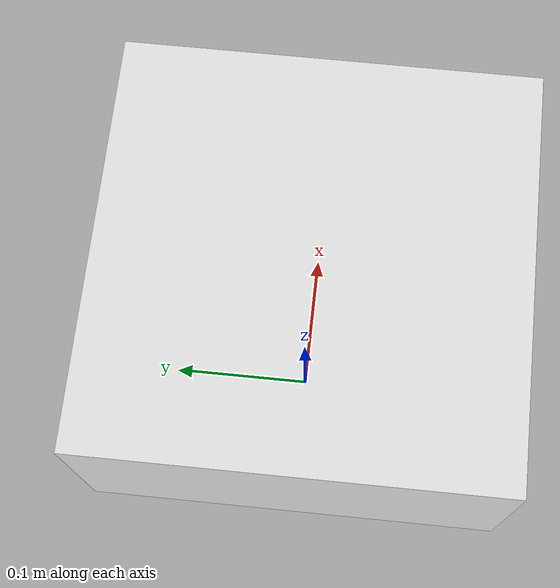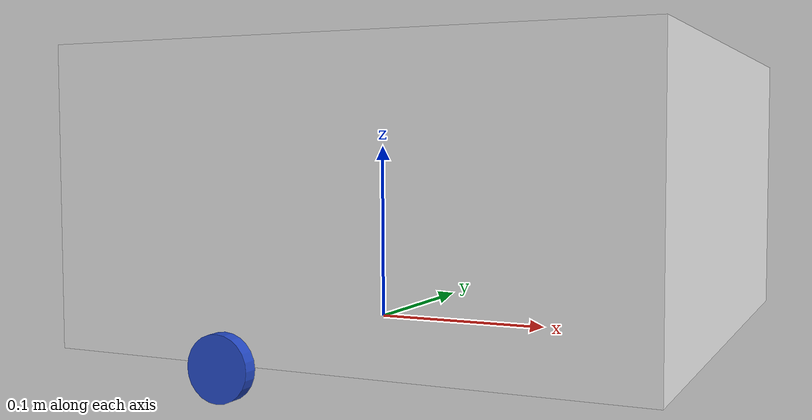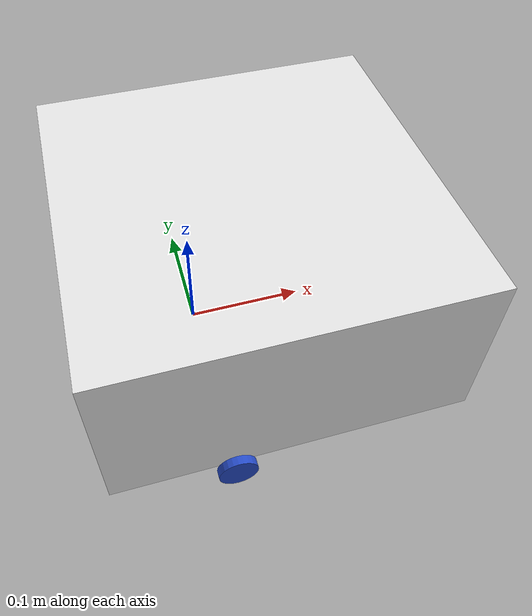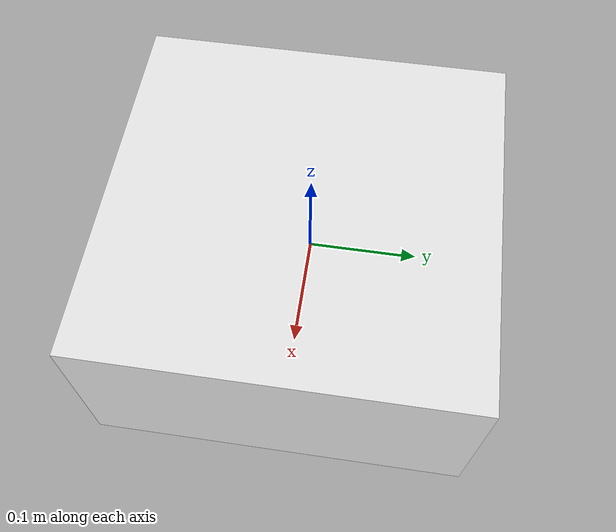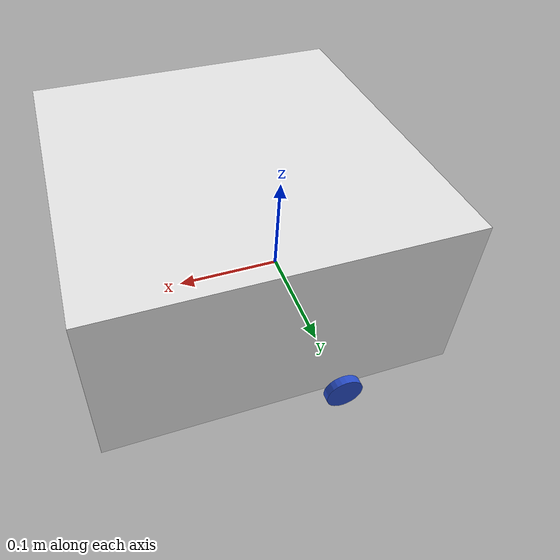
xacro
<?xml version="1.0"?>
<robot xmlns:xacro="http://www.ros.org/wiki/xacro">

    <xacro:include filename="inertial_macros.xacro"/>

    <xacro:property name="chassis_geometry">
            <origin xyz="0.15 0 0.075" rpy="0 0 0"/>
            <geometry>
                <box size="0.3 0.3 0.15"/>
            </geometry>
    </xacro:property>

    <xacro:property name="wheel_geometry_v">
            <geometry>
                <cylinder length="0.007" radius="0.016" />
            </geometry>
    </xacro:property>

    <xacro:property name="wheel_geometry_c">
            <geometry>
                <sphere radius="0.016" />
            </geometry>
    </xacro:property>

    <xacro:property name="caster_wheel_geometry">
            <geometry>
                <sphere radius="0.0127" />
            </geometry>
    </xacro:property>

    <link name="base_link">
    </link>

    <joint name="chassis_joint" type="fixed">
        <parent link="base_link"/>
        <child link="chassis"/>
        <origin xyz="-0.1 0 0"/>
    </joint>

    <link name="chassis">
        <visual>
            <xacro:insert_block name="chassis_geometry" />
            <material name="white"/>
        </visual>
        <collision>
            <xacro:insert_block name="chassis_geometry" />
        </collision>

        <xacro:inertial_box mass="0.5" x="0.3" y="0.3" z="0.15">
            <origin xyz="0.15 0 0.075" rpy="0 0 0"/>
        </xacro:inertial_box>
    </link>

    <!-- LEFT WHEEL -->

    <joint name="left_wheel_joint" type="continuous">
        <parent link="base_link"/>
        <child link="left_wheel"/>
        <origin xyz="0 0.157 0" rpy="-${pi/2} 0 0"/>
        <axis xyz="0 0 1"/>
    </joint>

    <link name="left_wheel">
        <visual>
            <xacro:insert_block name="wheel_geometry_v"/>
            <material name="blue"/>
        </visual>
        <collision>
            <xacro:insert_block name="wheel_geometry_c"/>
        </collision>

        <xacro:inertial_cylinder mass="0.1" length="0.007" radius="0.016">
            <origin xyz="0 0 0" rpy="0 0 0"/>
        </xacro:inertial_cylinder>

    </link>

    <!-- RIGHT WHEEL -->

    <joint name="right_wheel_joint" type="continuous">
        <parent link="base_link"/>
        <child link="right_wheel"/>
        <origin xyz="0 -0.157 0" rpy="${pi/2} 0 0"/>
        <axis xyz="0 0 -1"/>
    </joint>

    <link name="right_wheel">
        <visual>
            <xacro:insert_block name="wheel_geometry_v"/>
            <material name="blue"/>
        </visual>
        <collision>
            <xacro:insert_block name="wheel_geometry_c"/>
        </collision>

        <xacro:inertial_cylinder mass="0.1" length="0.007" radius="0.016">
            <origin xyz="0 0 0" rpy="0 0 0"/>
        </xacro:inertial_cylinder>
    </link>

    <!-- CASTER WHEEL -->

    <joint name="caster_wheel_joint" type="fixed">
        <parent link="chassis"/>
        <child link="caster_wheel"/>
        <origin xyz="0.24 0 0" rpy="0 0 0"/>
    </joint>

    <link name="caster_wheel">
        <visual>
            <xacro:insert_block name="caster_wheel_geometry"/>
            <material name="black"/>
        </visual>
        <collision>
            <xacro:insert_block name="caster_wheel_geometry"/>
        </collision>

        <xacro:inertial_sphere mass="0.1" radius="0.0127">
            <origin xyz="0 0 0" rpy="0 0 0"/>
        </xacro:inertial_sphere>
    </link>

    <gazebo reference="caster_wheel">
        <material>Gazebo/Black</material>
        <mu1 value="0.001"/>
        <mu2 value="0.001"/>
    </gazebo>

</robot>
